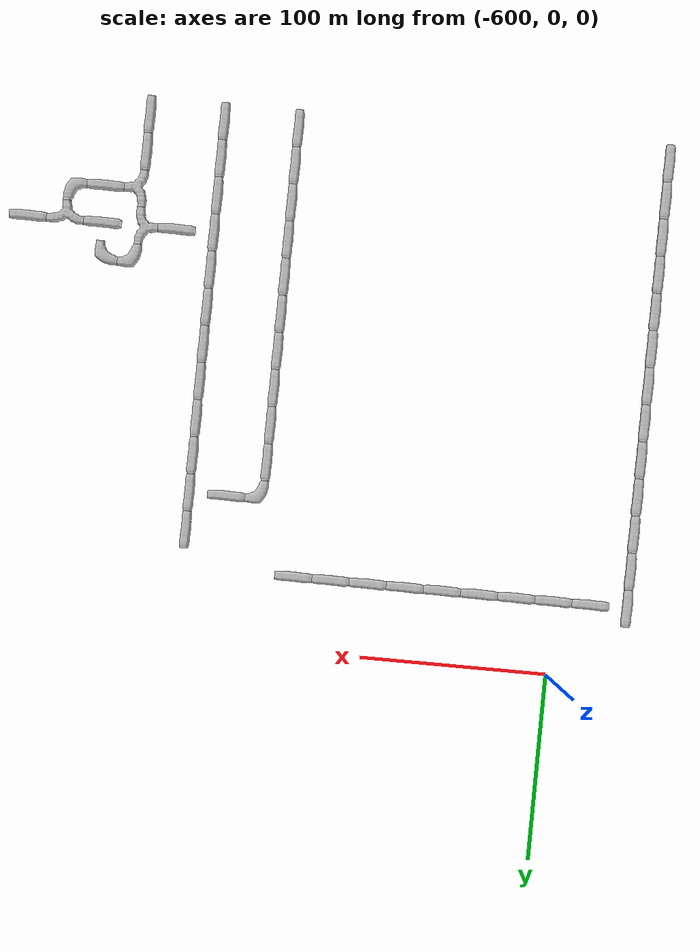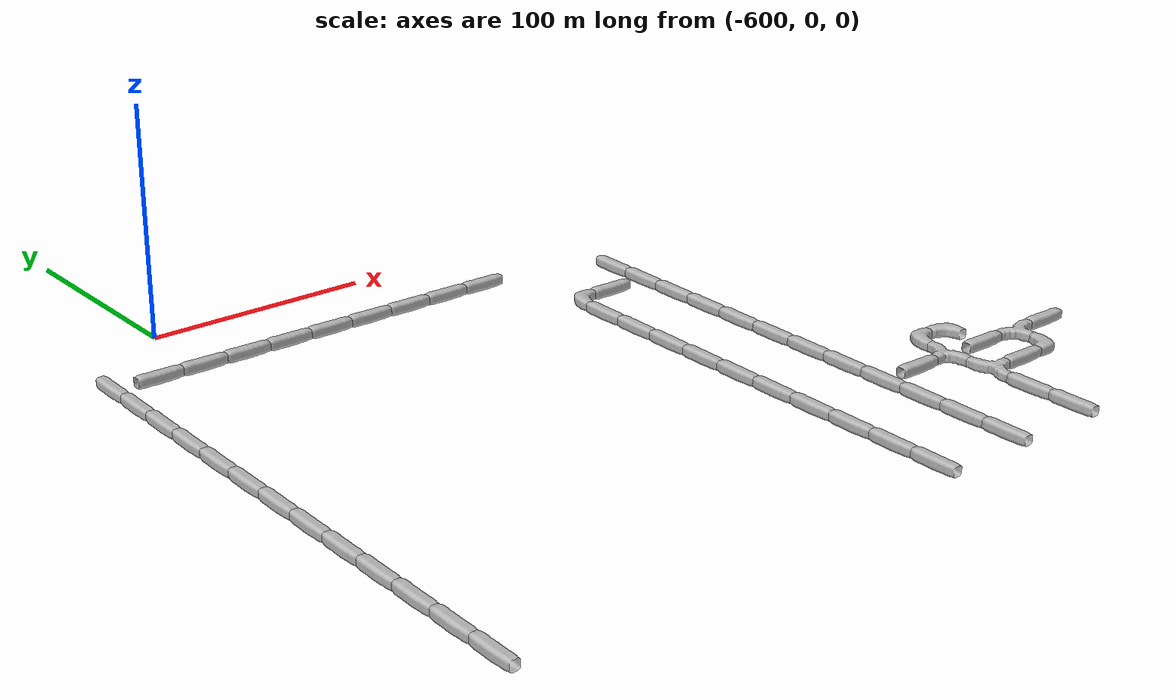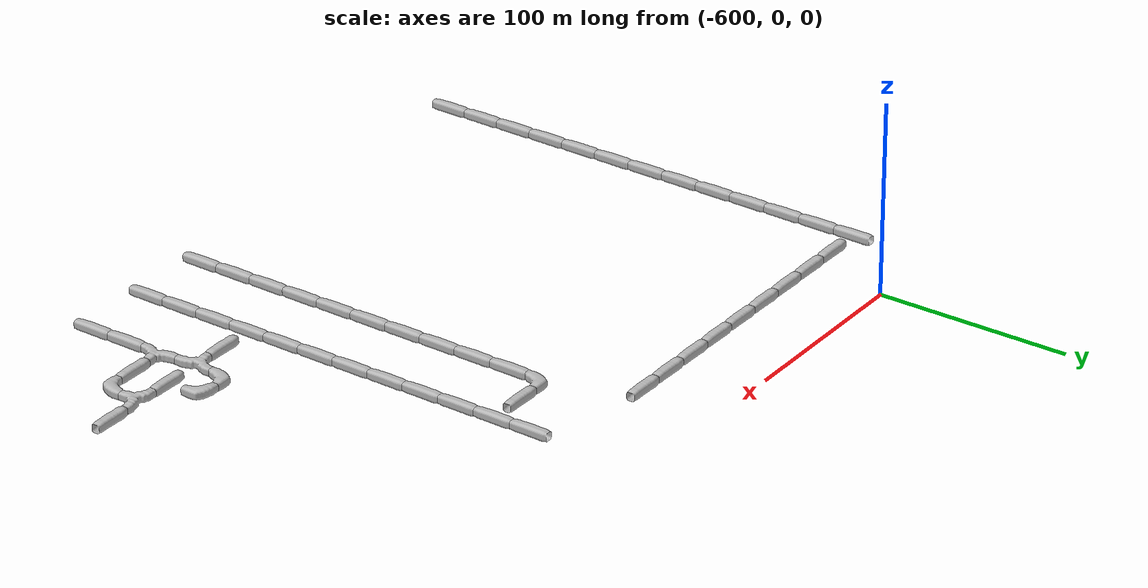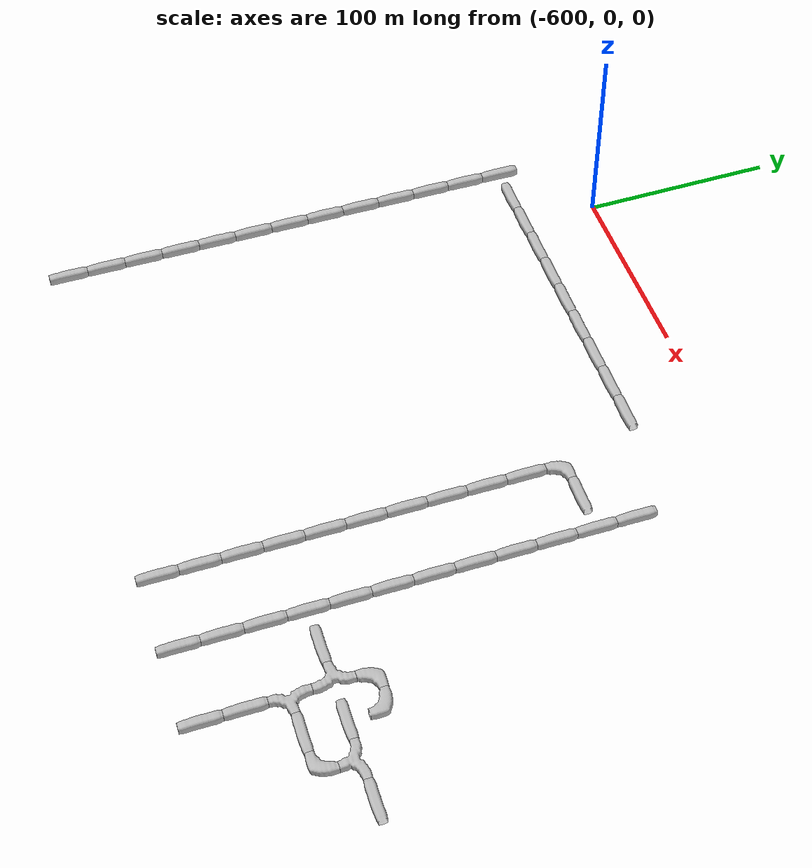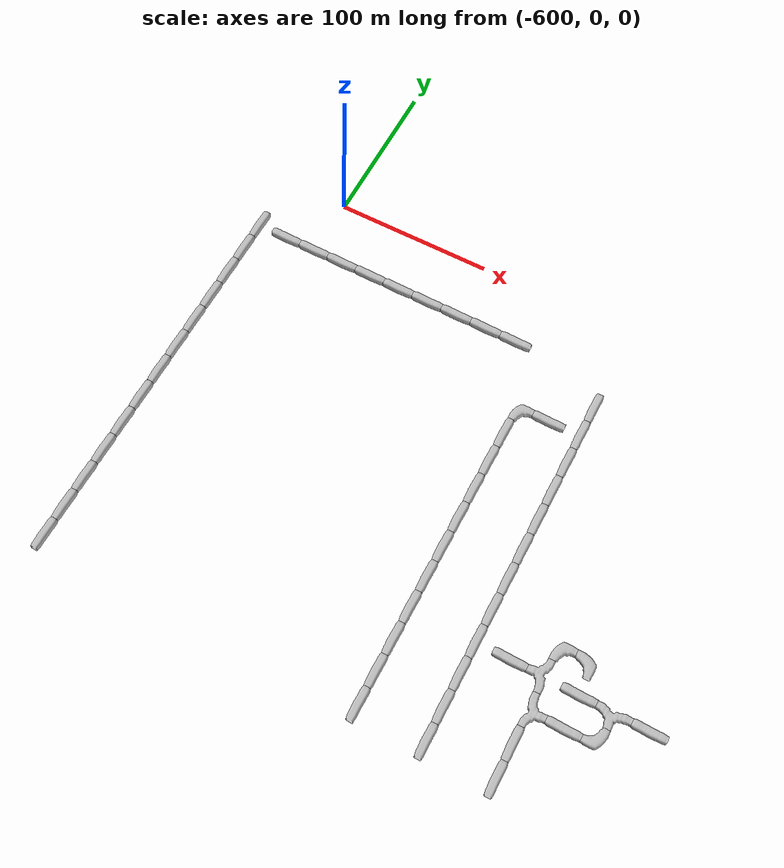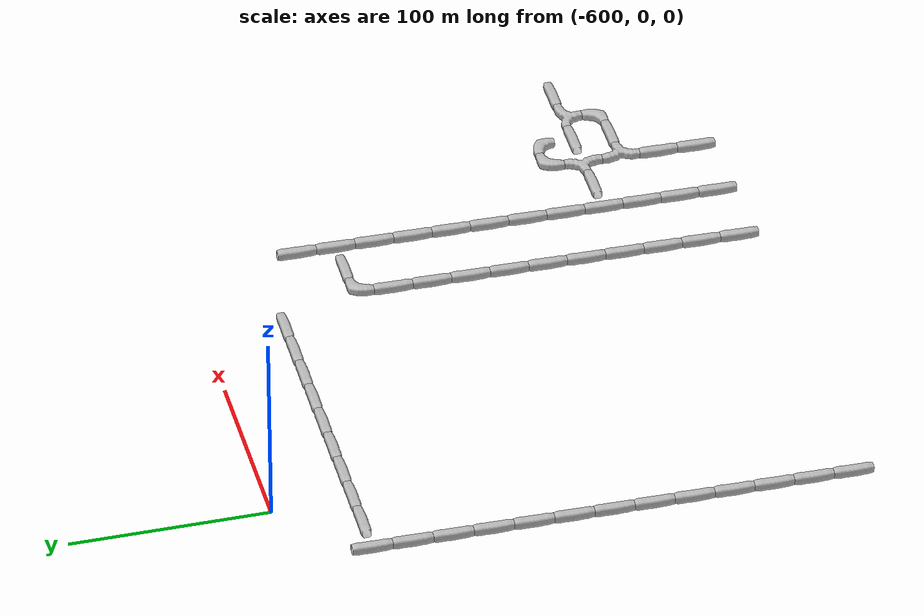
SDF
<sdf version="1.6">
 <world name="cave_32000_16">
  <include>
   <static>true</static>
   <name>cave_-32_-2</name>
   <pose>-640 -40 0 0 0 0.0</pose>
   <uri>model://cave_straight_20m</uri>
  </include>
  <include>
   <static>true</static>
   <name>cave_-32_-3</name>
   <pose>-640 -60 0 0 0 0.0</pose>
   <uri>model://cave_straight_20m</uri>
  </include>
  <include>
   <static>true</static>
   <name>cave_-32_-4</name>
   <pose>-640 -80 0 0 0 0.0</pose>
   <uri>model://cave_straight_20m</uri>
  </include>
  <include>
   <static>true</static>
   <name>cave_-32_-5</name>
   <pose>-640 -100 0 0 0 0.0</pose>
   <uri>model://cave_straight_20m</uri>
  </include>
  <include>
   <static>true</static>
   <name>cave_-32_-6</name>
   <pose>-640 -120 0 0 0 0.0</pose>
   <uri>model://cave_straight_20m</uri>
  </include>
  <include>
   <static>true</static>
   <name>cave_-32_-7</name>
   <pose>-640 -140 0 0 0 0.0</pose>
   <uri>model://cave_straight_20m</uri>
  </include>
  <include>
   <static>true</static>
   <name>cave_-32_-8</name>
   <pose>-640 -160 0 0 0 0.0</pose>
   <uri>model://cave_straight_20m</uri>
  </include>
  <include>
   <static>true</static>
   <name>cave_-32_-9</name>
   <pose>-640 -180 0 0 0 0.0</pose>
   <uri>model://cave_straight_20m</uri>
  </include>
  <include>
   <static>true</static>
   <name>cave_-32_-10</name>
   <pose>-640 -200 0 0 0 0.0</pose>
   <uri>model://cave_straight_20m</uri>
  </include>
  <include>
   <static>true</static>
   <name>cave_-32_-11</name>
   <pose>-640 -220 0 0 0 0.0</pose>
   <uri>model://cave_straight_20m</uri>
  </include>
  <include>
   <static>true</static>
   <name>cave_-32_-12</name>
   <pose>-640 -240 0 0 0 0.0</pose>
   <uri>model://cave_straight_20m</uri>
  </include>
  <include>
   <static>true</static>
   <name>cave_-32_-13</name>
   <pose>-640 -260 0 0 0 0.0</pose>
   <uri>model://cave_straight_20m</uri>
  </include>
  <include>
   <static>true</static>
   <name>cave_-32_-14</name>
   <pose>-640 -280 0 0 0 0.0</pose>
   <uri>model://cave_straight_20m</uri>
  </include>
  <include>
   <static>true</static>
   <name>cave_-18_-14</name>
   <pose>-360 -280 0 0 0 0.0</pose>
   <uri>model://cave_straight_20m</uri>
  </include>
  <include>
   <static>true</static>
   <name>cave_-18_-13</name>
   <pose>-360 -260 0 0 0 0.0</pose>
   <uri>model://cave_straight_20m</uri>
  </include>
  <include>
   <static>true</static>
   <name>cave_-18_-12</name>
   <pose>-360 -240 0 0 0 -1.5707963267948966</pose>
   <uri>model://cave_3way_20m</uri>
  </include>
  <include>
   <static>true</static>
   <name>cave_-17_-12</name>
   <pose>-340 -240 0 0 0 1.5707963267948966</pose>
   <uri>model://cave_straight_20m</uri>
  </include>
  <include>
   <static>true</static>
   <name>cave_-16_-12</name>
   <pose>-320 -240 0 0 0 1.5707963267948966</pose>
   <uri>model://cave_L_20m</uri>
  </include>
  <include>
   <static>true</static>
   <name>cave_-16_-11</name>
   <pose>-320 -220 0 0 0 3.141592653589793</pose>
   <uri>model://cave_3way_20m</uri>
  </include>
  <include>
   <static>true</static>
   <name>cave_-15_-11</name>
   <pose>-300 -220 0 0 0 1.5707963267948966</pose>
   <uri>model://cave_straight_20m</uri>
  </include>
  <include>
   <static>true</static>
   <name>cave_-17_-11</name>
   <pose>-340 -220 0 0 0 1.5707963267948966</pose>
   <uri>model://cave_straight_20m</uri>
  </include>
  <include>
   <static>true</static>
   <name>cave_-18_-11</name>
   <pose>-360 -220 0 0 0 1.5707963267948966</pose>
   <uri>model://cave_3way_20m</uri>
  </include>
  <include>
   <static>true</static>
   <name>cave_-19_-11</name>
   <pose>-380 -220 0 0 0 1.5707963267948966</pose>
   <uri>model://cave_straight_20m</uri>
  </include>
  <include>
   <static>true</static>
   <name>cave_-18_-10</name>
   <pose>-360 -200 0 0 0 -1.5707963267948966</pose>
   <uri>model://cave_L_20m</uri>
  </include>
  <include>
   <static>true</static>
   <name>cave_-17_-10</name>
   <pose>-340 -200 0 0 0 3.141592653589793</pose>
   <uri>model://cave_L_20m</uri>
  </include>
  <include>
   <static>true</static>
   <name>cave_-20_-14</name>
   <pose>-400 -280 0 0 0 0.0</pose>
   <uri>model://cave_straight_20m</uri>
  </include>
  <include>
   <static>true</static>
   <name>cave_-20_-13</name>
   <pose>-400 -260 0 0 0 0.0</pose>
   <uri>model://cave_straight_20m</uri>
  </include>
  <include>
   <static>true</static>
   <name>cave_-20_-12</name>
   <pose>-400 -240 0 0 0 0.0</pose>
   <uri>model://cave_straight_20m</uri>
  </include>
  <include>
   <static>true</static>
   <name>cave_-20_-11</name>
   <pose>-400 -220 0 0 0 0.0</pose>
   <uri>model://cave_straight_20m</uri>
  </include>
  <include>
   <static>true</static>
   <name>cave_-20_-10</name>
   <pose>-400 -200 0 0 0 0.0</pose>
   <uri>model://cave_straight_20m</uri>
  </include>
  <include>
   <static>true</static>
   <name>cave_-20_-9</name>
   <pose>-400 -180 0 0 0 0.0</pose>
   <uri>model://cave_straight_20m</uri>
  </include>
  <include>
   <static>true</static>
   <name>cave_-20_-8</name>
   <pose>-400 -160 0 0 0 0.0</pose>
   <uri>model://cave_straight_20m</uri>
  </include>
  <include>
   <static>true</static>
   <name>cave_-20_-7</name>
   <pose>-400 -140 0 0 0 0.0</pose>
   <uri>model://cave_straight_20m</uri>
  </include>
  <include>
   <static>true</static>
   <name>cave_-20_-6</name>
   <pose>-400 -120 0 0 0 0.0</pose>
   <uri>model://cave_straight_20m</uri>
  </include>
  <include>
   <static>true</static>
   <name>cave_-20_-5</name>
   <pose>-400 -100 0 0 0 0.0</pose>
   <uri>model://cave_straight_20m</uri>
  </include>
  <include>
   <static>true</static>
   <name>cave_-20_-4</name>
   <pose>-400 -80 0 0 0 0.0</pose>
   <uri>model://cave_straight_20m</uri>
  </include>
  <include>
   <static>true</static>
   <name>cave_-20_-3</name>
   <pose>-400 -60 0 0 0 0.0</pose>
   <uri>model://cave_straight_20m</uri>
  </include>
  <include>
   <static>true</static>
   <name>cave_-23_-2</name>
   <pose>-460 -40 0 0 0 1.5707963267948966</pose>
   <uri>model://cave_straight_20m</uri>
  </include>
  <include>
   <static>true</static>
   <name>cave_-24_-2</name>
   <pose>-480 -40 0 0 0 1.5707963267948966</pose>
   <uri>model://cave_straight_20m</uri>
  </include>
  <include>
   <static>true</static>
   <name>cave_-25_-2</name>
   <pose>-500 -40 0 0 0 1.5707963267948966</pose>
   <uri>model://cave_straight_20m</uri>
  </include>
  <include>
   <static>true</static>
   <name>cave_-26_-2</name>
   <pose>-520 -40 0 0 0 1.5707963267948966</pose>
   <uri>model://cave_straight_20m</uri>
  </include>
  <include>
   <static>true</static>
   <name>cave_-27_-2</name>
   <pose>-540 -40 0 0 0 1.5707963267948966</pose>
   <uri>model://cave_straight_20m</uri>
  </include>
  <include>
   <static>true</static>
   <name>cave_-28_-2</name>
   <pose>-560 -40 0 0 0 1.5707963267948966</pose>
   <uri>model://cave_straight_20m</uri>
  </include>
  <include>
   <static>true</static>
   <name>cave_-29_-2</name>
   <pose>-580 -40 0 0 0 1.5707963267948966</pose>
   <uri>model://cave_straight_20m</uri>
  </include>
  <include>
   <static>true</static>
   <name>cave_-30_-2</name>
   <pose>-600 -40 0 0 0 1.5707963267948966</pose>
   <uri>model://cave_straight_20m</uri>
  </include>
  <include>
   <static>true</static>
   <name>cave_-31_-2</name>
   <pose>-620 -40 0 0 0 1.5707963267948966</pose>
   <uri>model://cave_straight_20m</uri>
  </include>
  <include>
   <static>true</static>
   <name>cave_-22_-14</name>
   <pose>-440 -280 0 0 0 0.0</pose>
   <uri>model://cave_straight_20m</uri>
  </include>
  <include>
   <static>true</static>
   <name>cave_-22_-13</name>
   <pose>-440 -260 0 0 0 0.0</pose>
   <uri>model://cave_straight_20m</uri>
  </include>
  <include>
   <static>true</static>
   <name>cave_-22_-12</name>
   <pose>-440 -240 0 0 0 0.0</pose>
   <uri>model://cave_straight_20m</uri>
  </include>
  <include>
   <static>true</static>
   <name>cave_-22_-11</name>
   <pose>-440 -220 0 0 0 0.0</pose>
   <uri>model://cave_straight_20m</uri>
  </include>
  <include>
   <static>true</static>
   <name>cave_-22_-10</name>
   <pose>-440 -200 0 0 0 0.0</pose>
   <uri>model://cave_straight_20m</uri>
  </include>
  <include>
   <static>true</static>
   <name>cave_-22_-9</name>
   <pose>-440 -180 0 0 0 0.0</pose>
   <uri>model://cave_straight_20m</uri>
  </include>
  <include>
   <static>true</static>
   <name>cave_-22_-8</name>
   <pose>-440 -160 0 0 0 0.0</pose>
   <uri>model://cave_straight_20m</uri>
  </include>
  <include>
   <static>true</static>
   <name>cave_-22_-7</name>
   <pose>-440 -140 0 0 0 0.0</pose>
   <uri>model://cave_straight_20m</uri>
  </include>
  <include>
   <static>true</static>
   <name>cave_-22_-6</name>
   <pose>-440 -120 0 0 0 0.0</pose>
   <uri>model://cave_straight_20m</uri>
  </include>
  <include>
   <static>true</static>
   <name>cave_-22_-5</name>
   <pose>-440 -100 0 0 0 0.0</pose>
   <uri>model://cave_straight_20m</uri>
  </include>
  <include>
   <static>true</static>
   <name>cave_-22_-4</name>
   <pose>-440 -80 0 0 0 -1.5707963267948966</pose>
   <uri>model://cave_L_20m</uri>
  </include>
  <include>
   <static>true</static>
   <name>cave_-21_-4</name>
   <pose>-420 -80 0 0 0 1.5707963267948966</pose>
   <uri>model://cave_straight_20m</uri>
  </include>
 </world>
</sdf>
